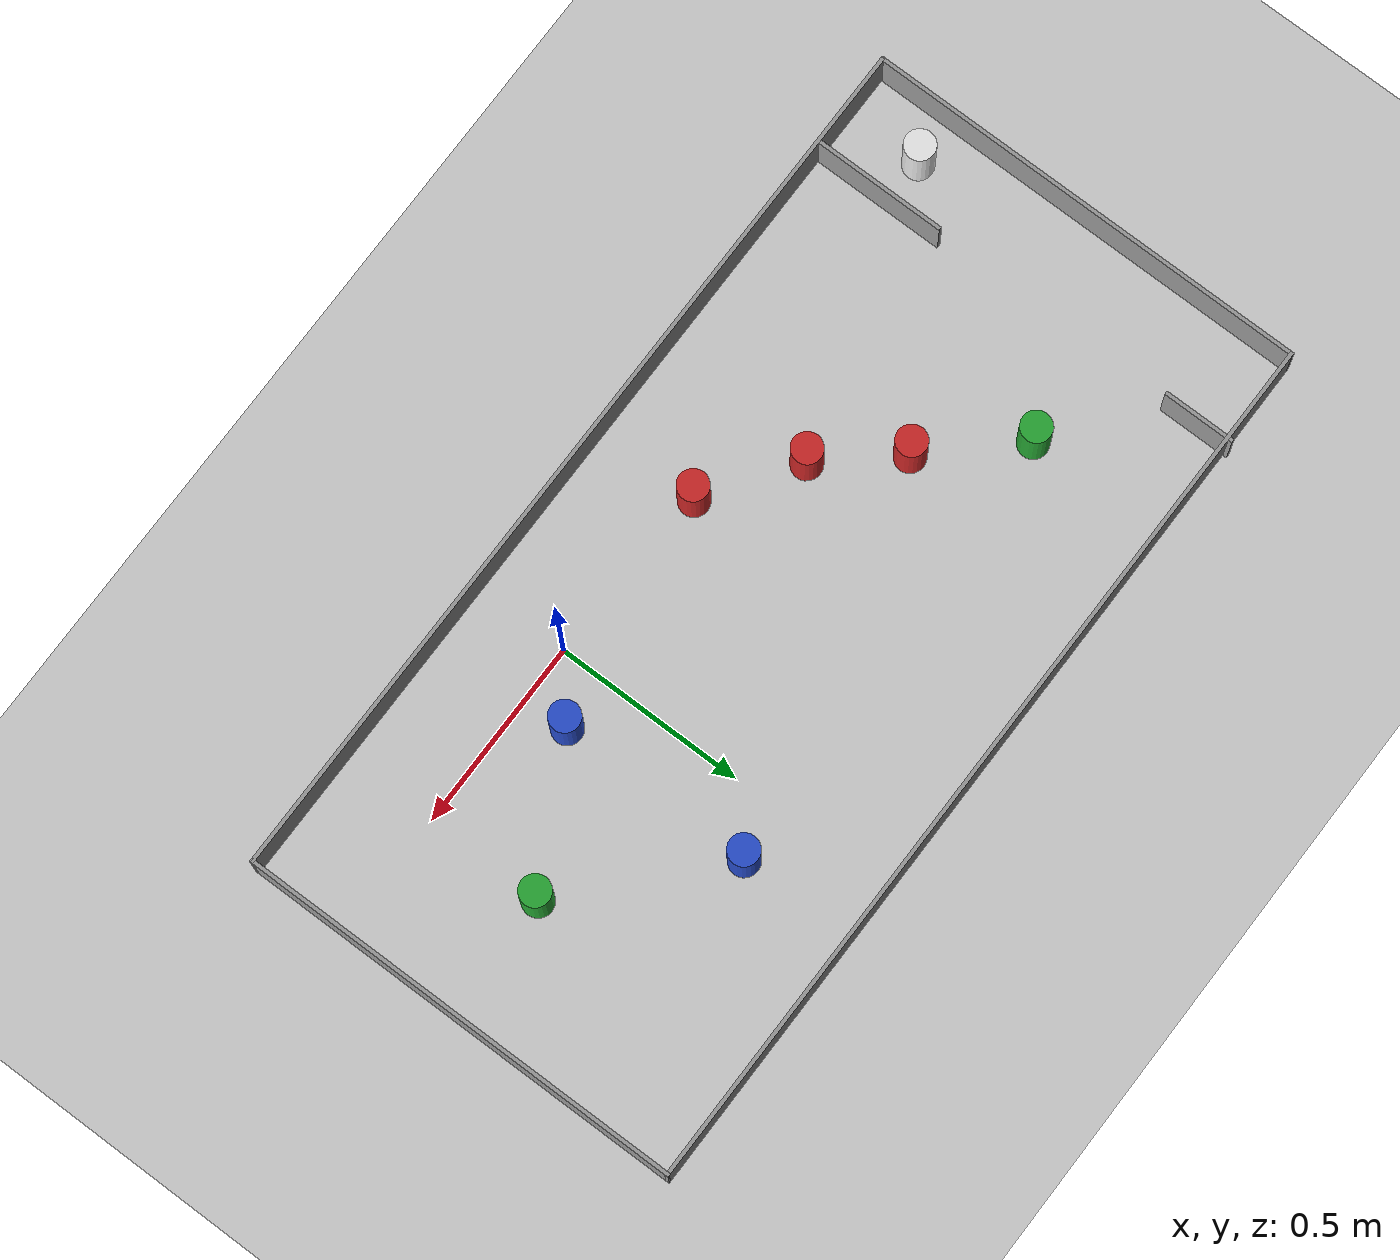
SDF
<sdf version="1.7">
 <world name="default">
  <light name="sun" type="directional">
   <pose>0 0 10 0 -0 0</pose>
   <diffuse>0.8 0.8 0.8 1</diffuse>
   <specular>0.2 0.2 0.2 1</specular>
   <attenuation>
    <range>1000</range>
    <constant>0.9</constant>
    <linear>0.01</linear>
    <quadratic>0.001</quadratic>
   </attenuation>
   <direction>-0.5 0.1 -0.9</direction>
   <spot><inner_angle>0</inner_angle><outer_angle>0</outer_angle><falloff>0</falloff></spot>
  </light>
  <model name="ground_plane">
   <static>1</static>
   <link name="link">
    <collision name="collision">
     <geometry><plane><normal>0 0 1</normal><size>100 100</size></plane></geometry>
     <surface>
      <contact><collide_bitmask>65535</collide_bitmask></contact>
      <friction><ode><mu>100</mu><mu2>50</mu2></ode></friction>
     </surface>
    </collision>
    <visual name="visual">
     <cast_shadows>0</cast_shadows>
     <geometry><plane><normal>0 0 1</normal><size>100 100</size></plane></geometry>
     <material>
      <script><uri>file://media/materials/scripts/gazebo.material</uri><name>Gazebo/Grey</name></script>
     </material>
    </visual>
   </link>
  </model>
  <gravity>0 0 -9.8</gravity>
  <magnetic_field>6e-06 2.3e-05 -4.2e-05</magnetic_field>
  <atmosphere type="adiabatic"/>
  <physics type="ode">
   <max_step_size>0.001</max_step_size>
   <real_time_factor>1</real_time_factor>
   <real_time_update_rate>1000</real_time_update_rate>
  </physics>
  <scene><ambient>0.4 0.4 0.4 1</ambient><background>0.7 0.7 0.7 1</background><shadows>1</shadows></scene>
  <audio><device>default</device></audio>
  <spherical_coordinates>
   <surface_model>EARTH_WGS84</surface_model>
   <latitude_deg>0</latitude_deg>
   <longitude_deg>0</longitude_deg>
   <elevation>0</elevation>
   <heading_deg>0</heading_deg>
  </spherical_coordinates>
  <model name="outline">
   <link name="Wall_31">
    <pose>-1.52596 1.569 0 0 0 -0.001261</pose>
    <inertial>
     <mass>1</mass>
     <inertia><ixx>1</ixx><ixy>0</ixy><ixz>0</ixz><iyy>1</iyy><iyz>0</iyz><izz>1</izz></inertia>
    </inertial>
    <visual name="Wall_31_Visual">
     <pose>0 0 0.05 0 -0 0</pose>
     <geometry><box><size>2.38916 0.01 0.2</size></box></geometry>
     <material>
      <script><uri>file://media/materials/scripts/gazebo.material</uri><name>Gazebo/Grey</name></script>
      <ambient>1 1 1 1</ambient>
      <shader type="pixel"><normal_map>__default__</normal_map></shader>
      <diffuse>0.7 0.7 0.7 1</diffuse>
      <specular>0.01 0.01 0.01 1</specular>
      <emissive>0 0 0 1</emissive>
     </material>
     <meta><layer>0</layer></meta>
    </visual>
    <collision name="Wall_31_Collision">
     <pose>0 0 0.05 0 -0 0</pose>
     <geometry><box><size>2.38916 0.01 0.2</size></box></geometry>
     <surface>
      <friction>
       <ode><mu>1</mu><mu2>1</mu2><fdir1>0 0 0</fdir1><slip1>0</slip1><slip2>0</slip2></ode>
       <torsional>
        <coefficient>1</coefficient>
        <patch_radius>0</patch_radius>
        <surface_radius>0</surface_radius>
        <use_patch_radius>1</use_patch_radius>
        <ode><slip>0</slip></ode>
       </torsional>
      </friction>
      <bounce><restitution_coefficient>0</restitution_coefficient><threshold>1e+06</threshold></bounce>
      <contact>
       <collide_without_contact>0</collide_without_contact>
       <collide_without_contact_bitmask>1</collide_without_contact_bitmask>
       <collide_bitmask>1</collide_bitmask>
       <ode>
        <soft_cfm>0</soft_cfm>
        <soft_erp>0.2</soft_erp>
        <kp>1e+13</kp>
        <kd>1</kd>
        <max_vel>0.01</max_vel>
        <min_depth>0</min_depth>
       </ode>
       <bullet>
        <split_impulse>1</split_impulse>
        <split_impulse_penetration_threshold>-0.01</split_impulse_penetration_threshold>
        <soft_cfm>0</soft_cfm>
        <soft_erp>0.2</soft_erp>
        <kp>1e+13</kp>
        <kd>1</kd>
       </bullet>
      </contact>
     </surface>
    </collision>
   </link>
   <link name="Wall_45">
    <pose>-2.71546 0.9795 0 0 0 -1.5708</pose>
    <inertial>
     <mass>1</mass>
     <inertia><ixx>1</ixx><ixy>0</ixy><ixz>0</ixz><iyy>1</iyy><iyz>0</iyz><izz>1</izz></inertia>
    </inertial>
    <visual name="Wall_45_Visual">
     <pose>0 0 0.05 0 -0 0</pose>
     <geometry><box><size>1.192 0.01 0.2</size></box></geometry>
     <material>
      <script><uri>file://media/materials/scripts/gazebo.material</uri><name>Gazebo/Grey</name></script>
      <ambient>1 1 1 1</ambient>
      <shader type="pixel"><normal_map>__default__</normal_map></shader>
      <diffuse>0.7 0.7 0.7 1</diffuse>
      <specular>0.01 0.01 0.01 1</specular>
      <emissive>0 0 0 1</emissive>
     </material>
     <meta><layer>0</layer></meta>
    </visual>
    <collision name="Wall_45_Collision">
     <pose>0 0 0.05 0 -0 0</pose>
     <geometry><box><size>1.192 0.01 0.2</size></box></geometry>
     <surface>
      <friction>
       <ode><mu>1</mu><mu2>1</mu2><fdir1>0 0 0</fdir1><slip1>0</slip1><slip2>0</slip2></ode>
       <torsional>
        <coefficient>1</coefficient>
        <patch_radius>0</patch_radius>
        <surface_radius>0</surface_radius>
        <use_patch_radius>1</use_patch_radius>
        <ode><slip>0</slip></ode>
       </torsional>
      </friction>
      <bounce><restitution_coefficient>0</restitution_coefficient><threshold>1e+06</threshold></bounce>
      <contact>
       <collide_without_contact>0</collide_without_contact>
       <collide_without_contact_bitmask>1</collide_without_contact_bitmask>
       <collide_bitmask>1</collide_bitmask>
       <ode>
        <soft_cfm>0</soft_cfm>
        <soft_erp>0.2</soft_erp>
        <kp>1e+13</kp>
        <kd>1</kd>
        <max_vel>0.01</max_vel>
        <min_depth>0</min_depth>
       </ode>
       <bullet>
        <split_impulse>1</split_impulse>
        <split_impulse_penetration_threshold>-0.01</split_impulse_penetration_threshold>
        <soft_cfm>0</soft_cfm>
        <soft_erp>0.2</soft_erp>
        <kp>1e+13</kp>
        <kd>1</kd>
       </bullet>
      </contact>
     </surface>
    </collision>
   </link>
   <link name="Wall_50">
    <pose>-1.52446 0.387 0 0 0 -0.001259</pose>
    <self_collide>1</self_collide>
    <inertial>
     <mass>1</mass>
     <inertia><ixx>1</ixx><ixy>0</ixy><ixz>0</ixz><iyy>1</iyy><iyz>0</iyz><izz>1</izz></inertia>
    </inertial>
    <visual name="Wall_50_Visual">
     <pose>0 0 0.05 0 -0 0</pose>
     <geometry><box><size>2.392 0.01 0.2</size></box></geometry>
     <material>
      <script><uri>file://media/materials/scripts/gazebo.material</uri><name>Gazebo/Grey</name></script>
      <ambient>1 1 1 1</ambient>
      <shader type="pixel"><normal_map>__default__</normal_map></shader>
      <diffuse>0.7 0.7 0.7 1</diffuse>
      <specular>0.01 0.01 0.01 1</specular>
      <emissive>0 0 0 1</emissive>
     </material>
     <meta><layer>0</layer></meta>
    </visual>
    <collision name="Wall_50_Collision">
     <pose>0 0 0.05 0 -0 0</pose>
     <geometry><box><size>2.392 0.01 0.2</size></box></geometry>
     <surface>
      <friction>
       <ode><mu>1</mu><mu2>1</mu2><fdir1>0 0 0</fdir1><slip1>0</slip1><slip2>0</slip2></ode>
       <torsional>
        <coefficient>1</coefficient>
        <patch_radius>0</patch_radius>
        <surface_radius>0</surface_radius>
        <use_patch_radius>1</use_patch_radius>
        <ode><slip>0</slip></ode>
       </torsional>
      </friction>
      <bounce><restitution_coefficient>0</restitution_coefficient><threshold>1e+06</threshold></bounce>
      <contact>
       <collide_without_contact>0</collide_without_contact>
       <collide_without_contact_bitmask>1</collide_without_contact_bitmask>
       <collide_bitmask>1</collide_bitmask>
       <ode>
        <soft_cfm>0</soft_cfm>
        <soft_erp>0.2</soft_erp>
        <kp>1e+13</kp>
        <kd>1</kd>
        <max_vel>0.01</max_vel>
        <min_depth>0</min_depth>
       </ode>
       <bullet>
        <split_impulse>1</split_impulse>
        <split_impulse_penetration_threshold>-0.01</split_impulse_penetration_threshold>
        <soft_cfm>0</soft_cfm>
        <soft_erp>0.2</soft_erp>
        <kp>1e+13</kp>
        <kd>1</kd>
       </bullet>
      </contact>
     </surface>
    </collision>
   </link>
   <link name="Wall_52">
    <pose>-0.334958 0.9765 0 0 -0 1.57333</pose>
    <inertial>
     <mass>1</mass>
     <inertia><ixx>1</ixx><ixy>0</ixy><ixz>0</ixz><iyy>1</iyy><iyz>0</iyz><izz>1</izz></inertia>
    </inertial>
    <visual name="Wall_52_Visual">
     <pose>0 0 0.05 0 -0 0</pose>
     <geometry><box><size>1.192 0.01 0.2</size></box></geometry>
     <material>
      <script><uri>file://media/materials/scripts/gazebo.material</uri><name>Gazebo/Grey</name></script>
      <ambient>1 1 1 1</ambient>
      <shader type="pixel"><normal_map>__default__</normal_map></shader>
      <diffuse>0.7 0.7 0.7 1</diffuse>
      <specular>0.01 0.01 0.01 1</specular>
      <emissive>0 0 0 1</emissive>
     </material>
     <meta><layer>0</layer></meta>
    </visual>
    <collision name="Wall_52_Collision">
     <pose>0 0 0.05 0 -0 0</pose>
     <geometry><box><size>1.192 0.01 0.2</size></box></geometry>
     <surface>
      <friction>
       <ode><mu>1</mu><mu2>1</mu2><fdir1>0 0 0</fdir1><slip1>0</slip1><slip2>0</slip2></ode>
       <torsional>
        <coefficient>1</coefficient>
        <patch_radius>0</patch_radius>
        <surface_radius>0</surface_radius>
        <use_patch_radius>1</use_patch_radius>
        <ode><slip>0</slip></ode>
       </torsional>
      </friction>
      <bounce><restitution_coefficient>0</restitution_coefficient><threshold>1e+06</threshold></bounce>
      <contact>
       <collide_without_contact>0</collide_without_contact>
       <collide_without_contact_bitmask>1</collide_without_contact_bitmask>
       <collide_bitmask>1</collide_bitmask>
       <ode>
        <soft_cfm>0</soft_cfm>
        <soft_erp>0.2</soft_erp>
        <kp>1e+13</kp>
        <kd>1</kd>
        <max_vel>0.01</max_vel>
        <min_depth>0</min_depth>
       </ode>
       <bullet>
        <split_impulse>1</split_impulse>
        <split_impulse_penetration_threshold>-0.01</split_impulse_penetration_threshold>
        <soft_cfm>0</soft_cfm>
        <soft_erp>0.2</soft_erp>
        <kp>1e+13</kp>
        <kd>1</kd>
       </bullet>
      </contact>
     </surface>
    </collision>
   </link>
   <link name="Wall_54">
    <pose>-2.46546 0.5635 0 0 -0 1.5708</pose>
    <inertial>
     <mass>1</mass>
     <inertia><ixx>1</ixx><ixy>0</ixy><ixz>0</ixz><iyy>1</iyy><iyz>0</iyz><izz>1</izz></inertia>
    </inertial>
    <visual name="Wall_54_Visual">
     <pose>0 0 0.05 0 -0 0</pose>
     <geometry><box><size>0.36 0.01 0.2</size></box></geometry>
     <material>
      <script><uri>file://media/materials/scripts/gazebo.material</uri><name>Gazebo/Grey</name></script>
      <ambient>1 1 1 1</ambient>
      <shader type="pixel"><normal_map>__default__</normal_map></shader>
      <diffuse>0.7 0.7 0.7 1</diffuse>
      <specular>0.01 0.01 0.01 1</specular>
      <emissive>0 0 0 1</emissive>
     </material>
     <meta><layer>0</layer></meta>
    </visual>
    <collision name="Wall_54_Collision">
     <pose>0 0 0.05 0 -0 0</pose>
     <geometry><box><size>0.36 0.01 0.2</size></box></geometry>
     <surface>
      <friction>
       <ode><mu>1</mu><mu2>1</mu2><fdir1>0 0 0</fdir1><slip1>0</slip1><slip2>0</slip2></ode>
       <torsional>
        <coefficient>1</coefficient>
        <patch_radius>0</patch_radius>
        <surface_radius>0</surface_radius>
        <use_patch_radius>1</use_patch_radius>
        <ode><slip>0</slip></ode>
       </torsional>
      </friction>
      <bounce><restitution_coefficient>0</restitution_coefficient><threshold>1e+06</threshold></bounce>
      <contact>
       <collide_without_contact>0</collide_without_contact>
       <collide_without_contact_bitmask>1</collide_without_contact_bitmask>
       <collide_bitmask>1</collide_bitmask>
       <ode>
        <soft_cfm>0</soft_cfm>
        <soft_erp>0.2</soft_erp>
        <kp>1e+13</kp>
        <kd>1</kd>
        <max_vel>0.01</max_vel>
        <min_depth>0</min_depth>
       </ode>
       <bullet>
        <split_impulse>1</split_impulse>
        <split_impulse_penetration_threshold>-0.01</split_impulse_penetration_threshold>
        <soft_cfm>0</soft_cfm>
        <soft_erp>0.2</soft_erp>
        <kp>1e+13</kp>
        <kd>1</kd>
       </bullet>
      </contact>
     </surface>
    </collision>
   </link>
   <link name="Wall_58">
    <pose>-2.46546 1.4895 0 0 0 -1.5708</pose>
    <inertial>
     <mass>1</mass>
     <inertia><ixx>1</ixx><ixy>0</ixy><ixz>0</ixz><iyy>1</iyy><iyz>0</iyz><izz>1</izz></inertia>
    </inertial>
    <visual name="Wall_58_Visual">
     <pose>0 0 0.05 0 -0 0</pose>
     <geometry><box><size>0.192 0.01 0.2</size></box></geometry>
     <material>
      <script><uri>file://media/materials/scripts/gazebo.material</uri><name>Gazebo/Grey</name></script>
      <ambient>1 1 1 1</ambient>
      <shader type="pixel"><normal_map>__default__</normal_map></shader>
      <diffuse>0.7 0.7 0.7 1</diffuse>
      <specular>0.01 0.01 0.01 1</specular>
      <emissive>0 0 0 1</emissive>
     </material>
     <meta><layer>0</layer></meta>
    </visual>
    <collision name="Wall_58_Collision">
     <pose>0 0 0.05 0 -0 0</pose>
     <geometry><box><size>0.192 0.01 0.2</size></box></geometry>
     <surface>
      <friction>
       <ode><mu>1</mu><mu2>1</mu2><fdir1>0 0 0</fdir1><slip1>0</slip1><slip2>0</slip2></ode>
       <torsional>
        <coefficient>1</coefficient>
        <patch_radius>0</patch_radius>
        <surface_radius>0</surface_radius>
        <use_patch_radius>1</use_patch_radius>
        <ode><slip>0</slip></ode>
       </torsional>
      </friction>
      <bounce><restitution_coefficient>0</restitution_coefficient><threshold>1e+06</threshold></bounce>
      <contact>
       <collide_without_contact>0</collide_without_contact>
       <collide_without_contact_bitmask>1</collide_without_contact_bitmask>
       <collide_bitmask>1</collide_bitmask>
       <ode>
        <soft_cfm>0</soft_cfm>
        <soft_erp>0.2</soft_erp>
        <kp>1e+13</kp>
        <kd>1</kd>
        <max_vel>0.01</max_vel>
        <min_depth>0</min_depth>
       </ode>
       <bullet>
        <split_impulse>1</split_impulse>
        <split_impulse_penetration_threshold>-0.01</split_impulse_penetration_threshold>
        <soft_cfm>0</soft_cfm>
        <soft_erp>0.2</soft_erp>
        <kp>1e+13</kp>
        <kd>1</kd>
       </bullet>
      </contact>
     </surface>
    </collision>
   </link>
   <static>1</static>
   <pose>1.16468 -0.631217 0 0 -0 0</pose>
  </model>
  <model name="energy_clone">
   <link name="link_0">
    <inertial>
     <mass>0.00011159</mass>
     <inertia><ixx>1.4e-07</ixx><ixy>0</ixy><ixz>0</ixz><iyy>1.4e-07</iyy><iyz>0</iyz><izz>1e-08</izz></inertia>
    </inertial>
    <visual name="visual">
     <geometry><cylinder><radius>0.04</radius><length>0.199999</length></cylinder></geometry>
     <material>
      <lighting>1</lighting>
      <script><uri>file://media/materials/scripts/gazebo.material</uri><name>Gazebo/White</name></script>
      <shader type="pixel"><normal_map>__default__</normal_map></shader>
      <ambient>1 1 1 1</ambient>
      <diffuse>1 1 1 1</diffuse>
      <specular>0.01 0.01 0.01 1</specular>
      <emissive>0 0 0 1</emissive>
     </material>
    </visual>
    <collision name="collision">
     <geometry><cylinder><radius>0.04</radius><length>0.2</length></cylinder></geometry>
     <surface>
      <friction>
       <ode><mu>1</mu><mu2>1</mu2><fdir1>0 0 0</fdir1><slip1>0</slip1><slip2>0</slip2></ode>
       <torsional>
        <coefficient>1</coefficient>
        <patch_radius>0</patch_radius>
        <surface_radius>0</surface_radius>
        <use_patch_radius>1</use_patch_radius>
        <ode><slip>0</slip></ode>
       </torsional>
      </friction>
      <bounce><restitution_coefficient>0</restitution_coefficient><threshold>1e+06</threshold></bounce>
      <contact>
       <collide_without_contact>0</collide_without_contact>
       <collide_without_contact_bitmask>1</collide_without_contact_bitmask>
       <collide_bitmask>1</collide_bitmask>
       <ode>
        <soft_cfm>0</soft_cfm>
        <soft_erp>0.2</soft_erp>
        <kp>1e+13</kp>
        <kd>1</kd>
        <max_vel>0.01</max_vel>
        <min_depth>0</min_depth>
       </ode>
       <bullet>
        <split_impulse>1</split_impulse>
        <split_impulse_penetration_threshold>-0.01</split_impulse_penetration_threshold>
        <soft_cfm>0</soft_cfm>
        <soft_erp>0.2</soft_erp>
        <kp>1e+13</kp>
        <kd>1</kd>
       </bullet>
      </contact>
     </surface>
    </collision>
   </link>
   <static>0</static>
   <pose>-1.4324 -0.045616 0.060993 0 -0 0</pose>
  </model>
  <model name="energy">
   <link name="link_0">
    <inertial>
     <mass>0.00011159</mass>
     <inertia><ixx>1.4e-07</ixx><ixy>0</ixy><ixz>0</ixz><iyy>1.4e-07</iyy><iyz>0</iyz><izz>1e-08</izz></inertia>
    </inertial>
    <visual name="visual">
     <geometry><cylinder><radius>0.04</radius><length>0.199999</length></cylinder></geometry>
     <material>
      <lighting>1</lighting>
      <script><uri>file://media/materials/scripts/gazebo.material</uri><name>Gazebo/Green</name></script>
      <shader type="pixel"><normal_map>__default__</normal_map></shader>
      <ambient>0 1 0 1</ambient>
      <diffuse>0 1 0 1</diffuse>
      <specular>0.01 0.01 0.01 1</specular>
      <emissive>0 0 0 1</emissive>
     </material>
    </visual>
    <collision name="collision">
     <geometry><cylinder><radius>0.04</radius><length>0.2</length></cylinder></geometry>
     <surface>
      <friction>
       <ode><mu>1</mu><mu2>1</mu2><fdir1>0 0 0</fdir1><slip1>0</slip1><slip2>0</slip2></ode>
       <torsional>
        <coefficient>1</coefficient>
        <patch_radius>0</patch_radius>
        <surface_radius>0</surface_radius>
        <use_patch_radius>1</use_patch_radius>
        <ode><slip>0</slip></ode>
       </torsional>
      </friction>
      <bounce><restitution_coefficient>0</restitution_coefficient><threshold>1e+06</threshold></bounce>
      <contact>
       <collide_without_contact>0</collide_without_contact>
       <collide_without_contact_bitmask>1</collide_without_contact_bitmask>
       <collide_bitmask>1</collide_bitmask>
       <ode>
        <soft_cfm>0</soft_cfm>
        <soft_erp>0.2</soft_erp>
        <kp>1e+13</kp>
        <kd>1</kd>
        <max_vel>0.01</max_vel>
        <min_depth>0</min_depth>
       </ode>
       <bullet>
        <split_impulse>1</split_impulse>
        <split_impulse_penetration_threshold>-0.01</split_impulse_penetration_threshold>
        <soft_cfm>0</soft_cfm>
        <soft_erp>0.2</soft_erp>
        <kp>1e+13</kp>
        <kd>1</kd>
       </bullet>
      </contact>
     </surface>
    </collision>
   </link>
   <static>0</static>
   <pose>0.499916 0.309179 0.060993 0 0 -2e-06</pose>
  </model>
  <model name="energy_clone_0_clone">
   <link name="link_0">
    <inertial>
     <mass>0.00011159</mass>
     <inertia><ixx>1.4e-07</ixx><ixy>0</ixy><ixz>0</ixz><iyy>1.4e-07</iyy><iyz>0</iyz><izz>1e-08</izz></inertia>
    </inertial>
    <visual name="visual">
     <geometry><cylinder><radius>0.04</radius><length>0.199999</length></cylinder></geometry>
     <material>
      <lighting>1</lighting>
      <script><uri>file://media/materials/scripts/gazebo.material</uri><name>Gazebo/Blue</name></script>
      <shader type="pixel"><normal_map>__default__</normal_map></shader>
      <ambient>0 0 1 1</ambient>
      <diffuse>0 0 0 1</diffuse>
      <specular>0.01 0.01 0.01 1</specular>
      <emissive>0 0 0 1</emissive>
     </material>
    </visual>
    <collision name="collision">
     <geometry><cylinder><radius>0.04</radius><length>0.2</length></cylinder></geometry>
     <surface>
      <friction>
       <ode><mu>1</mu><mu2>1</mu2><fdir1>0 0 0</fdir1><slip1>0</slip1><slip2>0</slip2></ode>
       <torsional>
        <coefficient>1</coefficient>
        <patch_radius>0</patch_radius>
        <surface_radius>0</surface_radius>
        <use_patch_radius>1</use_patch_radius>
        <ode><slip>0</slip></ode>
       </torsional>
      </friction>
      <bounce><restitution_coefficient>0</restitution_coefficient><threshold>1e+06</threshold></bounce>
      <contact>
       <collide_without_contact>0</collide_without_contact>
       <collide_without_contact_bitmask>1</collide_without_contact_bitmask>
       <collide_bitmask>1</collide_bitmask>
       <ode>
        <soft_cfm>0</soft_cfm>
        <soft_erp>0.2</soft_erp>
        <kp>1e+13</kp>
        <kd>1</kd>
        <max_vel>0.01</max_vel>
        <min_depth>0</min_depth>
       </ode>
       <bullet>
        <split_impulse>1</split_impulse>
        <split_impulse_penetration_threshold>-0.01</split_impulse_penetration_threshold>
        <soft_cfm>0</soft_cfm>
        <soft_erp>0.2</soft_erp>
        <kp>1e+13</kp>
        <kd>1</kd>
       </bullet>
      </contact>
     </surface>
    </collision>
   </link>
   <static>0</static>
   <pose>0.140777 0.117841 0.060993 0 0 -8e-06</pose>
  </model>
  <model name="energy_clone_1_clone_0">
   <link name="link_0">
    <inertial>
     <mass>0.00011159</mass>
     <inertia><ixx>1.4e-07</ixx><ixy>0</ixy><ixz>0</ixz><iyy>1.4e-07</iyy><iyz>0</iyz><izz>1e-08</izz></inertia>
    </inertial>
    <visual name="visual">
     <geometry><cylinder><radius>0.04</radius><length>0.199999</length></cylinder></geometry>
     <material>
      <lighting>1</lighting>
      <script><uri>file://media/materials/scripts/gazebo.material</uri><name>Gazebo/Red</name></script>
      <shader type="pixel"><normal_map>__default__</normal_map></shader>
      <ambient>1 0 0 1</ambient>
      <diffuse>1 0 0 1</diffuse>
      <specular>0.01 0.01 0.01 1</specular>
      <emissive>0 0 0 1</emissive>
     </material>
    </visual>
    <collision name="collision">
     <geometry><cylinder><radius>0.04</radius><length>0.2</length></cylinder></geometry>
     <surface>
      <friction>
       <ode><mu>1</mu><mu2>1</mu2><fdir1>0 0 0</fdir1><slip1>0</slip1><slip2>0</slip2></ode>
       <torsional>
        <coefficient>1</coefficient>
        <patch_radius>0</patch_radius>
        <surface_radius>0</surface_radius>
        <use_patch_radius>1</use_patch_radius>
        <ode><slip>0</slip></ode>
       </torsional>
      </friction>
      <bounce><restitution_coefficient>0</restitution_coefficient><threshold>1e+06</threshold></bounce>
      <contact>
       <collide_without_contact>0</collide_without_contact>
       <collide_without_contact_bitmask>1</collide_without_contact_bitmask>
       <collide_bitmask>1</collide_bitmask>
       <ode>
        <soft_cfm>0</soft_cfm>
        <soft_erp>0.2</soft_erp>
        <kp>1e+13</kp>
        <kd>1</kd>
        <max_vel>0.01</max_vel>
        <min_depth>0</min_depth>
       </ode>
       <bullet>
        <split_impulse>1</split_impulse>
        <split_impulse_penetration_threshold>-0.01</split_impulse_penetration_threshold>
        <soft_cfm>0</soft_cfm>
        <soft_erp>0.2</soft_erp>
        <kp>1e+13</kp>
        <kd>1</kd>
       </bullet>
      </contact>
     </surface>
    </collision>
   </link>
   <static>0</static>
   <pose>-0.465547 0.024933 0.061003 0 0 -5e-06</pose>
  </model>
  <model name="energy_clone_2">
   <link name="link_0">
    <inertial>
     <mass>0.00011159</mass>
     <inertia><ixx>1.4e-07</ixx><ixy>0</ixy><ixz>0</ixz><iyy>1.4e-07</iyy><iyz>0</iyz><izz>1e-08</izz></inertia>
    </inertial>
    <visual name="visual">
     <geometry><cylinder><radius>0.04</radius><length>0.199999</length></cylinder></geometry>
     <material>
      <lighting>1</lighting>
      <script><uri>file://media/materials/scripts/gazebo.material</uri><name>Gazebo/Green</name></script>
      <shader type="pixel"><normal_map>__default__</normal_map></shader>
      <ambient>1 1 0 1</ambient>
      <diffuse>0 0 0 1</diffuse>
      <specular>0.01 0.01 0.01 1</specular>
      <emissive>0 0 0 1</emissive>
     </material>
    </visual>
    <collision name="collision">
     <geometry><cylinder><radius>0.04</radius><length>0.2</length></cylinder></geometry>
     <surface>
      <friction>
       <ode><mu>1</mu><mu2>1</mu2><fdir1>0 0 0</fdir1><slip1>0</slip1><slip2>0</slip2></ode>
       <torsional>
        <coefficient>1</coefficient>
        <patch_radius>0</patch_radius>
        <surface_radius>0</surface_radius>
        <use_patch_radius>1</use_patch_radius>
        <ode><slip>0</slip></ode>
       </torsional>
      </friction>
      <bounce><restitution_coefficient>0</restitution_coefficient><threshold>1e+06</threshold></bounce>
      <contact>
       <collide_without_contact>0</collide_without_contact>
       <collide_without_contact_bitmask>1</collide_without_contact_bitmask>
       <collide_bitmask>1</collide_bitmask>
       <ode>
        <soft_cfm>0</soft_cfm>
        <soft_erp>0.2</soft_erp>
        <kp>1e+13</kp>
        <kd>1</kd>
        <max_vel>0.01</max_vel>
        <min_depth>0</min_depth>
       </ode>
       <bullet>
        <split_impulse>1</split_impulse>
        <split_impulse_penetration_threshold>-0.01</split_impulse_penetration_threshold>
        <soft_cfm>0</soft_cfm>
        <soft_erp>0.2</soft_erp>
        <kp>1e+13</kp>
        <kd>1</kd>
       </bullet>
      </contact>
     </surface>
    </collision>
   </link>
   <static>0</static>
   <pose>-1.05307 0.573098 0.060993 0 0 -8e-06</pose>
  </model>
  <model name="energy_clone_0_clone_clone">
   <link name="link_0">
    <inertial>
     <mass>0.00011159</mass>
     <inertia><ixx>1.4e-07</ixx><ixy>0</ixy><ixz>0</ixz><iyy>1.4e-07</iyy><iyz>0</iyz><izz>1e-08</izz></inertia>
    </inertial>
    <visual name="visual">
     <geometry><cylinder><radius>0.04</radius><length>0.199999</length></cylinder></geometry>
     <material>
      <lighting>1</lighting>
      <script><uri>file://media/materials/scripts/gazebo.material</uri><name>Gazebo/Blue</name></script>
      <shader type="pixel"><normal_map>__default__</normal_map></shader>
      <ambient>0 0 1 1</ambient>
      <diffuse>0 0 0 1</diffuse>
      <specular>0.01 0.01 0.01 1</specular>
      <emissive>0 0 0 1</emissive>
     </material>
    </visual>
    <collision name="collision">
     <geometry><cylinder><radius>0.04</radius><length>0.2</length></cylinder></geometry>
     <surface>
      <friction>
       <ode><mu>1</mu><mu2>1</mu2><fdir1>0 0 0</fdir1><slip1>0</slip1><slip2>0</slip2></ode>
       <torsional>
        <coefficient>1</coefficient>
        <patch_radius>0</patch_radius>
        <surface_radius>0</surface_radius>
        <use_patch_radius>1</use_patch_radius>
        <ode><slip>0</slip></ode>
       </torsional>
      </friction>
      <bounce><restitution_coefficient>0</restitution_coefficient><threshold>1e+06</threshold></bounce>
      <contact>
       <collide_without_contact>0</collide_without_contact>
       <collide_without_contact_bitmask>1</collide_without_contact_bitmask>
       <collide_bitmask>1</collide_bitmask>
       <ode>
        <soft_cfm>0</soft_cfm>
        <soft_erp>0.2</soft_erp>
        <kp>1e+13</kp>
        <kd>1</kd>
        <max_vel>0.01</max_vel>
        <min_depth>0</min_depth>
       </ode>
       <bullet>
        <split_impulse>1</split_impulse>
        <split_impulse_penetration_threshold>-0.01</split_impulse_penetration_threshold>
        <soft_cfm>0</soft_cfm>
        <soft_erp>0.2</soft_erp>
        <kp>1e+13</kp>
        <kd>1</kd>
       </bullet>
      </contact>
     </surface>
    </collision>
   </link>
   <static>0</static>
   <pose>0.140142 0.629982 0.060993 0 0 -8e-06</pose>
  </model>
  <model name="energy_clone_1_clone_0_clone">
   <link name="link_0">
    <inertial>
     <mass>0.00011159</mass>
     <inertia><ixx>1.4e-07</ixx><ixy>0</ixy><ixz>0</ixz><iyy>1.4e-07</iyy><iyz>0</iyz><izz>1e-08</izz></inertia>
    </inertial>
    <visual name="visual">
     <geometry><cylinder><radius>0.04</radius><length>0.199999</length></cylinder></geometry>
     <material>
      <lighting>1</lighting>
      <script><uri>file://media/materials/scripts/gazebo.material</uri><name>Gazebo/Red</name></script>
      <shader type="pixel"><normal_map>__default__</normal_map></shader>
      <ambient>1 0 0 1</ambient>
      <diffuse>1 0 0 1</diffuse>
      <specular>0.01 0.01 0.01 1</specular>
      <emissive>0 0 0 1</emissive>
     </material>
    </visual>
    <collision name="collision">
     <geometry><cylinder><radius>0.04</radius><length>0.2</length></cylinder></geometry>
     <surface>
      <friction>
       <ode><mu>1</mu><mu2>1</mu2><fdir1>0 0 0</fdir1><slip1>0</slip1><slip2>0</slip2></ode>
       <torsional>
        <coefficient>1</coefficient>
        <patch_radius>0</patch_radius>
        <surface_radius>0</surface_radius>
        <use_patch_radius>1</use_patch_radius>
        <ode><slip>0</slip></ode>
       </torsional>
      </friction>
      <bounce><restitution_coefficient>0</restitution_coefficient><threshold>1e+06</threshold></bounce>
      <contact>
       <collide_without_contact>0</collide_without_contact>
       <collide_without_contact_bitmask>1</collide_without_contact_bitmask>
       <collide_bitmask>1</collide_bitmask>
       <ode>
        <soft_cfm>0</soft_cfm>
        <soft_erp>0.2</soft_erp>
        <kp>1e+13</kp>
        <kd>1</kd>
        <max_vel>0.01</max_vel>
        <min_depth>0</min_depth>
       </ode>
       <bullet>
        <split_impulse>1</split_impulse>
        <split_impulse_penetration_threshold>-0.01</split_impulse_penetration_threshold>
        <soft_cfm>0</soft_cfm>
        <soft_erp>0.2</soft_erp>
        <kp>1e+13</kp>
        <kd>1</kd>
       </bullet>
      </contact>
     </surface>
    </collision>
   </link>
   <static>0</static>
   <pose>-0.852932 0.363447 0.061003 0 0 -5e-06</pose>
  </model>
  <model name="energy_clone_1_clone_0_clone_0">
   <link name="link_0">
    <inertial>
     <mass>0.00011159</mass>
     <inertia><ixx>1.4e-07</ixx><ixy>0</ixy><ixz>0</ixz><iyy>1.4e-07</iyy><iyz>0</iyz><izz>1e-08</izz></inertia>
    </inertial>
    <visual name="visual">
     <geometry><cylinder><radius>0.04</radius><length>0.199999</length></cylinder></geometry>
     <material>
      <lighting>1</lighting>
      <script><uri>file://media/materials/scripts/gazebo.material</uri><name>Gazebo/Red</name></script>
      <shader type="pixel"><normal_map>__default__</normal_map></shader>
      <ambient>1 0 0 1</ambient>
      <diffuse>1 0 0 1</diffuse>
      <specular>0.01 0.01 0.01 1</specular>
      <emissive>0 0 0 1</emissive>
     </material>
    </visual>
    <collision name="collision">
     <geometry><cylinder><radius>0.04</radius><length>0.2</length></cylinder></geometry>
     <surface>
      <friction>
       <ode><mu>1</mu><mu2>1</mu2><fdir1>0 0 0</fdir1><slip1>0</slip1><slip2>0</slip2></ode>
       <torsional>
        <coefficient>1</coefficient>
        <patch_radius>0</patch_radius>
        <surface_radius>0</surface_radius>
        <use_patch_radius>1</use_patch_radius>
        <ode><slip>0</slip></ode>
       </torsional>
      </friction>
      <bounce><restitution_coefficient>0</restitution_coefficient><threshold>1e+06</threshold></bounce>
      <contact>
       <collide_without_contact>0</collide_without_contact>
       <collide_without_contact_bitmask>1</collide_without_contact_bitmask>
       <collide_bitmask>1</collide_bitmask>
       <ode>
        <soft_cfm>0</soft_cfm>
        <soft_erp>0.2</soft_erp>
        <kp>1e+13</kp>
        <kd>1</kd>
        <max_vel>0.01</max_vel>
        <min_depth>0</min_depth>
       </ode>
       <bullet>
        <split_impulse>1</split_impulse>
        <split_impulse_penetration_threshold>-0.01</split_impulse_penetration_threshold>
        <soft_cfm>0</soft_cfm>
        <soft_erp>0.2</soft_erp>
        <kp>1e+13</kp>
        <kd>1</kd>
       </bullet>
      </contact>
     </surface>
    </collision>
   </link>
   <static>0</static>
   <pose>-0.693562 0.181538 0.061003 0 0 -5e-06</pose>
  </model>
 </world>
</sdf>
